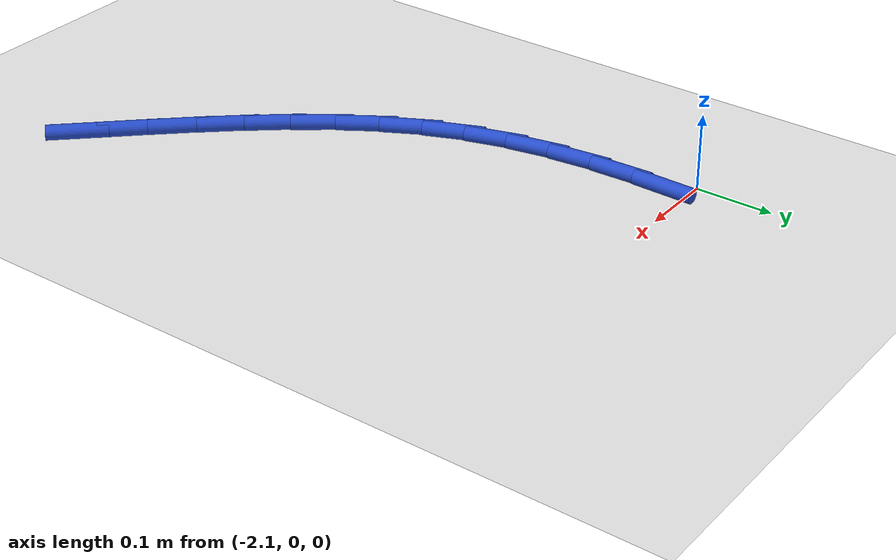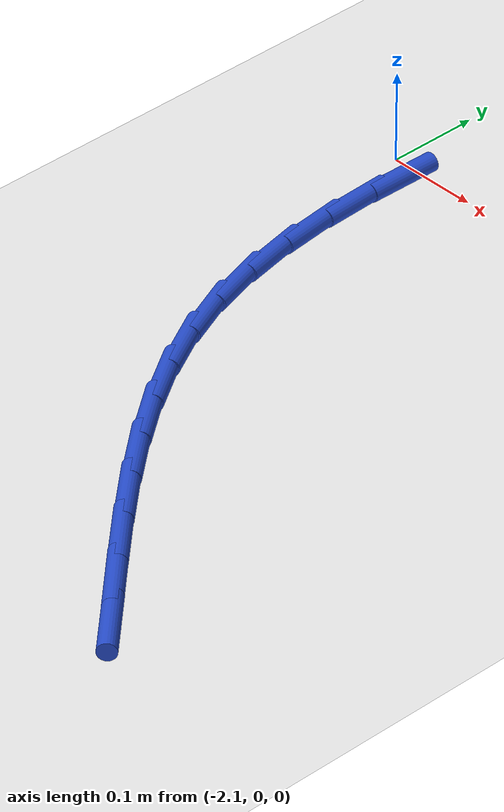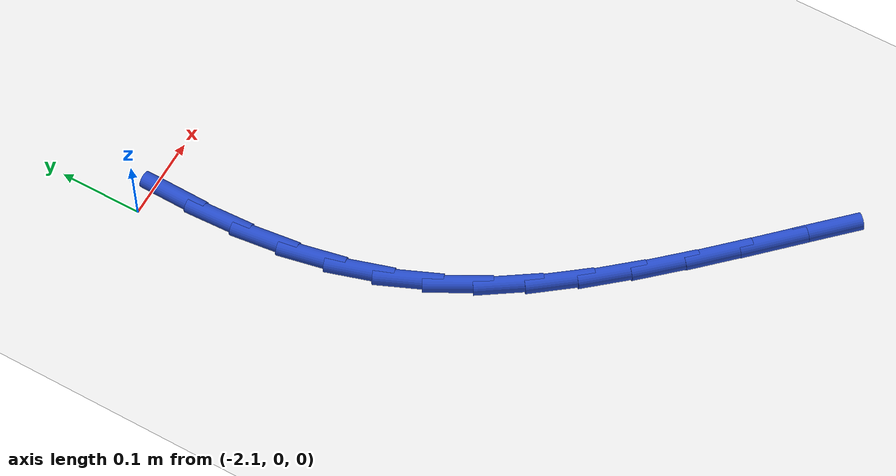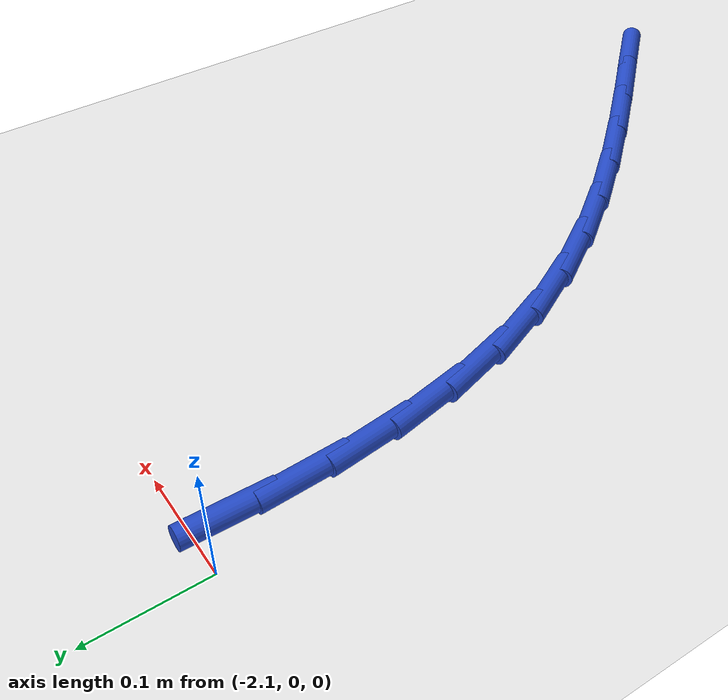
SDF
<sdf version="1.6">
 <world name="default">
  <model name="ground_plane">
   <static>1</static>
   <link name="link">
    <collision name="collision">
     <geometry><plane><normal>0 0 1</normal><size>100 100</size></plane></geometry>
     <surface><friction><ode><mu>100</mu><mu2>50</mu2></ode></friction></surface>
    </collision>
    <visual name="visual">
     <cast_shadows>0</cast_shadows>
     <geometry><plane><normal>0 0 1</normal><size>100 100</size></plane></geometry>
     <material>
      <script><uri>file://media/materials/scripts/gazebo.material</uri><name>Gazebo/WhiteGlow</name></script>
     </material>
    </visual>
   </link>
  </model>
  <model name="line">
   <link name="link_56">
    <pose>-2.064997564057098 -0.02712112759440321 0.01 0 1.57 1.5522628436818597</pose>
    <collision name="collision">
     <geometry><cylinder><radius>0.01</radius><length>0.08</length></cylinder></geometry>
    </collision>
    <visual name="visual">
     <material>
      <script><name>Gazebo/Blue</name><uri>file://media/materials/scripts/gazebo.material</uri></script>
     </material>
     <geometry><cylinder><radius>0.01</radius><length>0.08</length></cylinder></geometry>
    </visual>
   </link>
   <link name="link_57">
    <pose>-2.066115584186552 -0.08743856010980361 0.01 0 1.57 -1.528075214822109</pose>
    <collision name="collision">
     <geometry><cylinder><radius>0.01</radius><length>0.08</length></cylinder></geometry>
    </collision>
    <visual name="visual">
     <material>
      <script><name>Gazebo/Blue</name><uri>file://media/materials/scripts/gazebo.material</uri></script>
     </material>
     <geometry><cylinder><radius>0.01</radius><length>0.08</length></cylinder></geometry>
    </visual>
   </link>
   <link name="link_58">
    <pose>-2.0636021564811475 -0.1462361504162573 0.01 0 1.57 -1.4550416519987779</pose>
    <collision name="collision">
     <geometry><cylinder><radius>0.01</radius><length>0.08</length></cylinder></geometry>
    </collision>
    <visual name="visual">
     <material>
      <script><name>Gazebo/Blue</name><uri>file://media/materials/scripts/gazebo.material</uri></script>
     </material>
     <geometry><cylinder><radius>0.01</radius><length>0.08</length></cylinder></geometry>
    </visual>
   </link>
   <link name="link_59">
    <pose>-2.056959123343048 -0.2033684976950908 0.01 0 1.57 -1.369814983116513</pose>
    <collision name="collision">
     <geometry><cylinder><radius>0.01</radius><length>0.08</length></cylinder></geometry>
    </collision>
    <visual name="visual">
     <material>
      <script><name>Gazebo/Blue</name><uri>file://media/materials/scripts/gazebo.material</uri></script>
     </material>
     <geometry><cylinder><radius>0.01</radius><length>0.08</length></cylinder></geometry>
    </visual>
   </link>
   <link name="link_60">
    <pose>-2.0456883271744215 -0.25869020112762864 0.01 0 1.57 -1.2726994766473092</pose>
    <collision name="collision">
     <geometry><cylinder><radius>0.01</radius><length>0.08</length></cylinder></geometry>
    </collision>
    <visual name="visual">
     <material>
      <script><name>Gazebo/Blue</name><uri>file://media/materials/scripts/gazebo.material</uri></script>
     </material>
     <geometry><cylinder><radius>0.01</radius><length>0.08</length></cylinder></geometry>
    </visual>
   </link>
   <link name="link_61">
    <pose>-2.029291610377431 -0.31205585989519724 0.01 0 1.57 -1.166292274343858</pose>
    <collision name="collision">
     <geometry><cylinder><radius>0.01</radius><length>0.08</length></cylinder></geometry>
    </collision>
    <visual name="visual">
     <material>
      <script><name>Gazebo/Blue</name><uri>file://media/materials/scripts/gazebo.material</uri></script>
     </material>
     <geometry><cylinder><radius>0.01</radius><length>0.08</length></cylinder></geometry>
    </visual>
   </link>
   <link name="link_62">
    <pose>-2.0073325231422117 -0.36334864961124974 0.01 0 1.57 -1.066468878381418</pose>
    <collision name="collision">
     <geometry><cylinder><radius>0.01</radius><length>0.08</length></cylinder></geometry>
    </collision>
    <visual name="visual">
     <material>
      <script><name>Gazebo/Blue</name><uri>file://media/materials/scripts/gazebo.material</uri></script>
     </material>
     <geometry><cylinder><radius>0.01</radius><length>0.08</length></cylinder></geometry>
    </visual>
   </link>
   <link name="link_63">
    <pose>-1.9800565222181326 -0.41276753190507276 0.01 0 1.57 -0.9833182067718703</pose>
    <collision name="collision">
     <geometry><cylinder><radius>0.01</radius><length>0.08</length></cylinder></geometry>
    </collision>
    <visual name="visual">
     <material>
      <script><name>Gazebo/Blue</name><uri>file://media/materials/scripts/gazebo.material</uri></script>
     </material>
     <geometry><cylinder><radius>0.01</radius><length>0.08</length></cylinder></geometry>
    </visual>
   </link>
   <link name="link_64">
    <pose>-1.9481327374063382 -0.4607076683445228 0.01 0 1.57 -0.9171107893538831</pose>
    <collision name="collision">
     <geometry><cylinder><radius>0.01</radius><length>0.08</length></cylinder></geometry>
    </collision>
    <visual name="visual">
     <material>
      <script><name>Gazebo/Blue</name><uri>file://media/materials/scripts/gazebo.material</uri></script>
     </material>
     <geometry><cylinder><radius>0.01</radius><length>0.08</length></cylinder></geometry>
    </visual>
   </link>
   <link name="link_65">
    <pose>-1.9122366636042467 -0.5075671681276962 0.01 0 1.57 -0.8670263525296296</pose>
    <collision name="collision">
     <geometry><cylinder><radius>0.01</radius><length>0.08</length></cylinder></geometry>
    </collision>
    <visual name="visual">
     <material>
      <script><name>Gazebo/Blue</name><uri>file://media/materials/scripts/gazebo.material</uri></script>
     </material>
     <geometry><cylinder><radius>0.01</radius><length>0.08</length></cylinder></geometry>
    </visual>
   </link>
   <link name="link_66">
    <pose>-1.8730437957092776 -0.5537441404526893 0.01 0 1.57 -0.8318649699992814</pose>
    <collision name="collision">
     <geometry><cylinder><radius>0.01</radius><length>0.08</length></cylinder></geometry>
    </collision>
    <visual name="visual">
     <material>
      <script><name>Gazebo/Blue</name><uri>file://media/materials/scripts/gazebo.material</uri></script>
     </material>
     <geometry><cylinder><radius>0.01</radius><length>0.08</length></cylinder></geometry>
    </visual>
   </link>
   <link name="link_67">
    <pose>-1.8312296286188514 -0.5996366945175966 0.01 0 1.57 -0.8104165391662642</pose>
    <collision name="collision">
     <geometry><cylinder><radius>0.01</radius><length>0.08</length></cylinder></geometry>
    </collision>
    <visual name="visual">
     <material>
      <script><name>Gazebo/Blue</name><uri>file://media/materials/scripts/gazebo.material</uri></script>
     </material>
     <geometry><cylinder><radius>0.01</radius><length>0.08</length></cylinder></geometry>
    </visual>
   </link>
   <link name="link_68">
    <pose>-1.7874696572303872 -0.6456429395205153 0.01 0 1.57 -0.8016478695830301</pose>
    <collision name="collision">
     <geometry><cylinder><radius>0.01</radius><length>0.08</length></cylinder></geometry>
    </collision>
    <visual name="visual">
     <material>
      <script><name>Gazebo/Blue</name><uri>file://media/materials/scripts/gazebo.material</uri></script>
     </material>
     <geometry><cylinder><radius>0.01</radius><length>0.08</length></cylinder></geometry>
    </visual>
   </link>
   <link name="link_69">
    <pose>-1.7424393764413042 -0.6921609846595396 0.01 0 1.57 -0.8047702705455921</pose>
    <collision name="collision">
     <geometry><cylinder><radius>0.01</radius><length>0.08</length></cylinder></geometry>
    </collision>
    <visual name="visual">
     <material>
      <script><name>Gazebo/Blue</name><uri>file://media/materials/scripts/gazebo.material</uri></script>
     </material>
     <geometry><cylinder><radius>0.01</radius><length>0.08</length></cylinder></geometry>
    </visual>
   </link>
  </model>
 </world>
</sdf>
